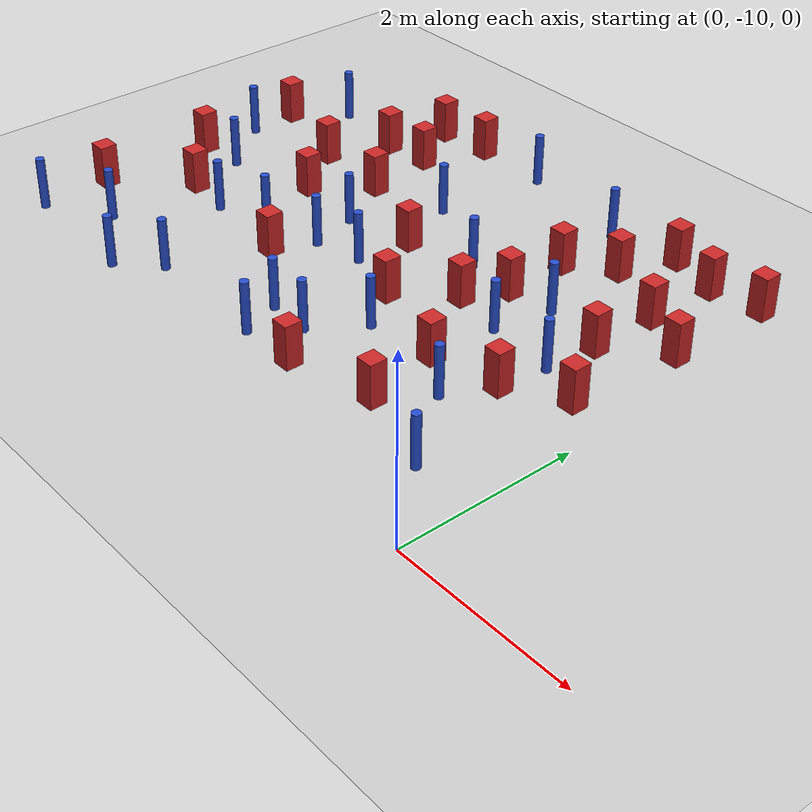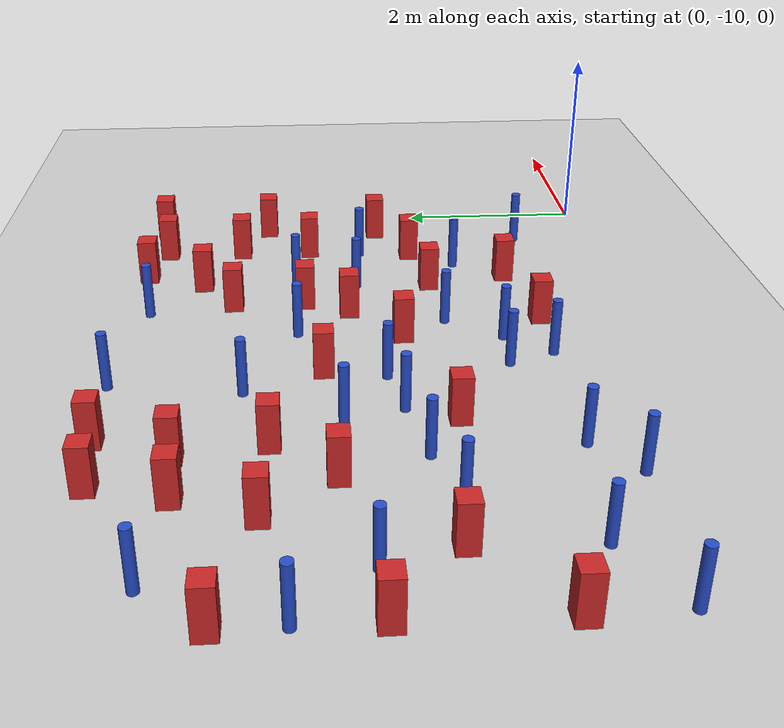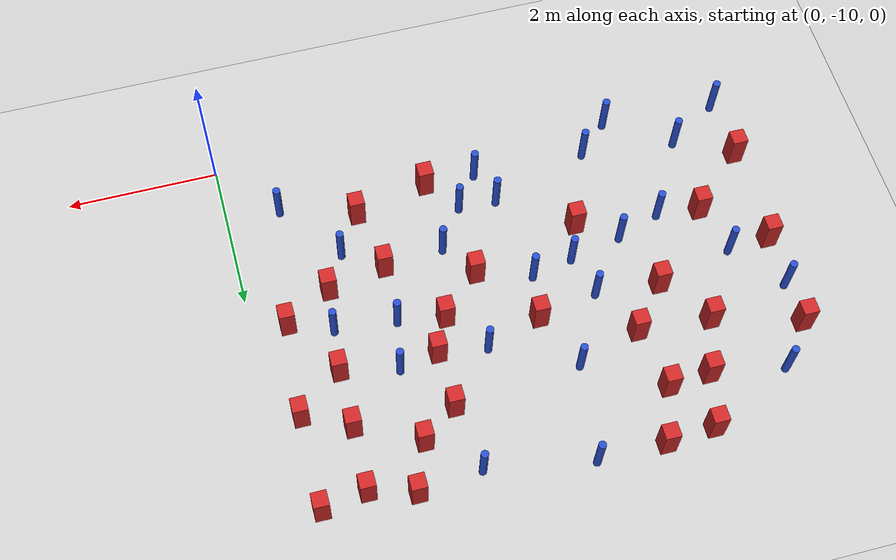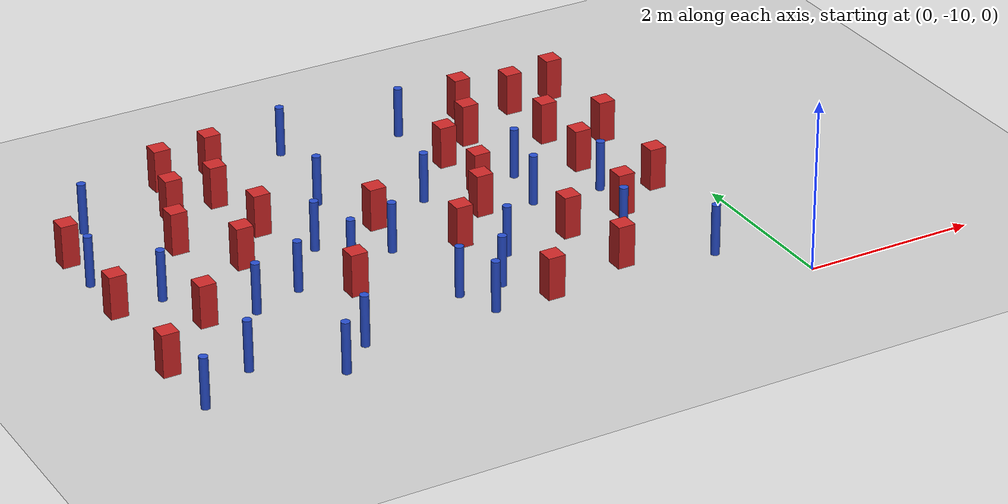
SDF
<sdf version="1.6">
 <world name="default">
  <model name="ground_plane">
   <static>1</static>
   <link name="link">
    <collision name="collision">
     <geometry><plane><normal>0 0 1</normal><size>100 100</size></plane></geometry>
     <surface><friction><ode><mu>100</mu><mu2>50</mu2></ode></friction></surface>
    </collision>
    <visual name="visual">
     <cast_shadows>0</cast_shadows>
     <geometry><plane><normal>0 0 1</normal><size>100 100</size></plane></geometry>
     <material>
      <ambient>1.0 1.0 1.0 1.0</ambient>
      <diffuse>0.8 0.8 0.8 1.0</diffuse>
      <specular>0.01 0.01 0.01 1.000000</specular>
     </material>
    </visual>
   </link>
  </model>
  <model name="square_post_obstacle16">
   <static>true</static>
   <pose>-2.2230492415 -6.63477181087 -6.11067671241e-07 -5.50515727128e-06 -8.79689657224e-07 2.37013304536e-05</pose>
   <link name="link">
    <pose>0 0 0.25 0 -0 0</pose>
    <inertial>
     <mass>100</mass>
     <inertia>
      <ixx>0.166667</ixx>
      <ixy>0</ixy>
      <ixz>0</ixz>
      <iyy>0.166667</iyy>
      <iyz>0</iyz>
      <izz>0.166667</izz>
     </inertia>
    </inertial>
    <collision name="collision"><geometry><box><size>.2 .2 .5</size></box></geometry></collision>
    <visual name="visual">
     <geometry><box><size>.2 .2 .5</size></box></geometry>
     <material>
      <script><name>Gazebo/Red</name><uri>file://media/materials/scripts/gazebo.material</uri></script>
     </material>
    </visual>
   </link>
  </model>
  <model name="square_post_obstacle17">
   <static>true</static>
   <pose>-4.90225215587 -5.46459543071 -6.11067671241e-07 -5.50515727128e-06 -8.79689657224e-07 2.37013304536e-05</pose>
   <link name="link">
    <pose>0 0 0.25 0 -0 0</pose>
    <inertial>
     <mass>100</mass>
     <inertia>
      <ixx>0.166667</ixx>
      <ixy>0</ixy>
      <ixz>0</ixz>
      <iyy>0.166667</iyy>
      <iyz>0</iyz>
      <izz>0.166667</izz>
     </inertia>
    </inertial>
    <collision name="collision"><geometry><box><size>.2 .2 .5</size></box></geometry></collision>
    <visual name="visual">
     <geometry><box><size>.2 .2 .5</size></box></geometry>
     <material>
      <script><name>Gazebo/Red</name><uri>file://media/materials/scripts/gazebo.material</uri></script>
     </material>
    </visual>
   </link>
  </model>
  <model name="pole_obstacle14">
   <static>true</static>
   <pose>-5.57467568248 -7.8820841528 -9.47619616065e-06 5.49618799737e-07 2.36310414037e-07 -1.55090534814e-07</pose>
   <link name="link">
    <pose>0 0 0.3 0 -0 0</pose>
    <inertial>
     <mass>1</mass>
     <inertia><ixx>0.145833</ixx><ixy>0</ixy><ixz>0</ixz><iyy>0.145833</iyy><iyz>0</iyz><izz>0.125</izz></inertia>
    </inertial>
    <collision name="collision">
     <geometry><cylinder><radius>0.05</radius><length>.6</length></cylinder></geometry>
    </collision>
    <visual name="visual">
     <geometry><cylinder><radius>0.05</radius><length>.6</length></cylinder></geometry>
     <material>
      <script><name>Gazebo/Blue</name><uri>file://media/materials/scripts/gazebo.material</uri></script>
     </material>
    </visual>
   </link>
  </model>
  <model name="square_post_obstacle24">
   <static>true</static>
   <pose>-0.95335000836 -5.91281050949 -6.11067671241e-07 -5.50515727128e-06 -8.79689657224e-07 2.37013304536e-05</pose>
   <link name="link">
    <pose>0 0 0.25 0 -0 0</pose>
    <inertial>
     <mass>100</mass>
     <inertia>
      <ixx>0.166667</ixx>
      <ixy>0</ixy>
      <ixz>0</ixz>
      <iyy>0.166667</iyy>
      <iyz>0</iyz>
      <izz>0.166667</izz>
     </inertia>
    </inertial>
    <collision name="collision"><geometry><box><size>.2 .2 .5</size></box></geometry></collision>
    <visual name="visual">
     <geometry><box><size>.2 .2 .5</size></box></geometry>
     <material>
      <script><name>Gazebo/Red</name><uri>file://media/materials/scripts/gazebo.material</uri></script>
     </material>
    </visual>
   </link>
  </model>
  <model name="square_post_obstacle34">
   <static>true</static>
   <pose>-4.63194995254 -4.75044083374 -6.11067671241e-07 -5.50515727128e-06 -8.79689657224e-07 2.37013304536e-05</pose>
   <link name="link">
    <pose>0 0 0.25 0 -0 0</pose>
    <inertial>
     <mass>100</mass>
     <inertia>
      <ixx>0.166667</ixx>
      <ixy>0</ixy>
      <ixz>0</ixz>
      <iyy>0.166667</iyy>
      <iyz>0</iyz>
      <izz>0.166667</izz>
     </inertia>
    </inertial>
    <collision name="collision"><geometry><box><size>.2 .2 .5</size></box></geometry></collision>
    <visual name="visual">
     <geometry><box><size>.2 .2 .5</size></box></geometry>
     <material>
      <script><name>Gazebo/Red</name><uri>file://media/materials/scripts/gazebo.material</uri></script>
     </material>
    </visual>
   </link>
  </model>
  <model name="pole_obstacle36">
   <static>true</static>
   <pose>-4.27256095001 -7.52233419704 -9.47619616065e-06 5.49618799737e-07 2.36310414037e-07 -1.55090534814e-07</pose>
   <link name="link">
    <pose>0 0 0.3 0 -0 0</pose>
    <inertial>
     <mass>1</mass>
     <inertia><ixx>0.145833</ixx><ixy>0</ixy><ixz>0</ixz><iyy>0.145833</iyy><iyz>0</iyz><izz>0.125</izz></inertia>
    </inertial>
    <collision name="collision">
     <geometry><cylinder><radius>0.05</radius><length>.6</length></cylinder></geometry>
    </collision>
    <visual name="visual">
     <geometry><cylinder><radius>0.05</radius><length>.6</length></cylinder></geometry>
     <material>
      <script><name>Gazebo/Blue</name><uri>file://media/materials/scripts/gazebo.material</uri></script>
     </material>
    </visual>
   </link>
  </model>
  <model name="square_post_obstacle41">
   <static>true</static>
   <pose>-1.51514881737 -4.89056977395 -6.11067671241e-07 -5.50515727128e-06 -8.79689657224e-07 2.37013304536e-05</pose>
   <link name="link">
    <pose>0 0 0.25 0 -0 0</pose>
    <inertial>
     <mass>100</mass>
     <inertia>
      <ixx>0.166667</ixx>
      <ixy>0</ixy>
      <ixz>0</ixz>
      <iyy>0.166667</iyy>
      <iyz>0</iyz>
      <izz>0.166667</izz>
     </inertia>
    </inertial>
    <collision name="collision"><geometry><box><size>.2 .2 .5</size></box></geometry></collision>
    <visual name="visual">
     <geometry><box><size>.2 .2 .5</size></box></geometry>
     <material>
      <script><name>Gazebo/Red</name><uri>file://media/materials/scripts/gazebo.material</uri></script>
     </material>
    </visual>
   </link>
  </model>
  <model name="pole_obstacle44">
   <static>true</static>
   <pose>-6.31597186964 -7.13616952807 -9.47619616065e-06 5.49618799737e-07 2.36310414037e-07 -1.55090534814e-07</pose>
   <link name="link">
    <pose>0 0 0.3 0 -0 0</pose>
    <inertial>
     <mass>1</mass>
     <inertia><ixx>0.145833</ixx><ixy>0</ixy><ixz>0</ixz><iyy>0.145833</iyy><iyz>0</iyz><izz>0.125</izz></inertia>
    </inertial>
    <collision name="collision">
     <geometry><cylinder><radius>0.05</radius><length>.6</length></cylinder></geometry>
    </collision>
    <visual name="visual">
     <geometry><cylinder><radius>0.05</radius><length>.6</length></cylinder></geometry>
     <material>
      <script><name>Gazebo/Blue</name><uri>file://media/materials/scripts/gazebo.material</uri></script>
     </material>
    </visual>
   </link>
  </model>
  <model name="square_post_obstacle42">
   <static>true</static>
   <pose>-2.23775466635 -5.87062115987 -6.11067671241e-07 -5.50515727128e-06 -8.79689657224e-07 2.37013304536e-05</pose>
   <link name="link">
    <pose>0 0 0.25 0 -0 0</pose>
    <inertial>
     <mass>100</mass>
     <inertia>
      <ixx>0.166667</ixx>
      <ixy>0</ixy>
      <ixz>0</ixz>
      <iyy>0.166667</iyy>
      <iyz>0</iyz>
      <izz>0.166667</izz>
     </inertia>
    </inertial>
    <collision name="collision"><geometry><box><size>.2 .2 .5</size></box></geometry></collision>
    <visual name="visual">
     <geometry><box><size>.2 .2 .5</size></box></geometry>
     <material>
      <script><name>Gazebo/Red</name><uri>file://media/materials/scripts/gazebo.material</uri></script>
     </material>
    </visual>
   </link>
  </model>
  <model name="square_post_obstacle43">
   <static>true</static>
   <pose>-6.86675011821 -7.1739250253 -6.11067671241e-07 -5.50515727128e-06 -8.79689657224e-07 2.37013304536e-05</pose>
   <link name="link">
    <pose>0 0 0.25 0 -0 0</pose>
    <inertial>
     <mass>100</mass>
     <inertia>
      <ixx>0.166667</ixx>
      <ixy>0</ixy>
      <ixz>0</ixz>
      <iyy>0.166667</iyy>
      <iyz>0</iyz>
      <izz>0.166667</izz>
     </inertia>
    </inertial>
    <collision name="collision"><geometry><box><size>.2 .2 .5</size></box></geometry></collision>
    <visual name="visual">
     <geometry><box><size>.2 .2 .5</size></box></geometry>
     <material>
      <script><name>Gazebo/Red</name><uri>file://media/materials/scripts/gazebo.material</uri></script>
     </material>
    </visual>
   </link>
  </model>
  <model name="square_post_obstacle46">
   <static>true</static>
   <pose>-1.86546183177 -8.00379529042 -6.11067671241e-07 -5.50515727128e-06 -8.79689657224e-07 2.37013304536e-05</pose>
   <link name="link">
    <pose>0 0 0.25 0 -0 0</pose>
    <inertial>
     <mass>100</mass>
     <inertia>
      <ixx>0.166667</ixx>
      <ixy>0</ixy>
      <ixz>0</ixz>
      <iyy>0.166667</iyy>
      <iyz>0</iyz>
      <izz>0.166667</izz>
     </inertia>
    </inertial>
    <collision name="collision"><geometry><box><size>.2 .2 .5</size></box></geometry></collision>
    <visual name="visual">
     <geometry><box><size>.2 .2 .5</size></box></geometry>
     <material>
      <script><name>Gazebo/Red</name><uri>file://media/materials/scripts/gazebo.material</uri></script>
     </material>
    </visual>
   </link>
  </model>
  <model name="pole_obstacle51">
   <static>true</static>
   <pose>-4.98210711811 -7.67297280239 -9.47619616065e-06 5.49618799737e-07 2.36310414037e-07 -1.55090534814e-07</pose>
   <link name="link">
    <pose>0 0 0.3 0 -0 0</pose>
    <inertial>
     <mass>1</mass>
     <inertia><ixx>0.145833</ixx><ixy>0</ixy><ixz>0</ixz><iyy>0.145833</iyy><iyz>0</iyz><izz>0.125</izz></inertia>
    </inertial>
    <collision name="collision">
     <geometry><cylinder><radius>0.05</radius><length>.6</length></cylinder></geometry>
    </collision>
    <visual name="visual">
     <geometry><cylinder><radius>0.05</radius><length>.6</length></cylinder></geometry>
     <material>
      <script><name>Gazebo/Blue</name><uri>file://media/materials/scripts/gazebo.material</uri></script>
     </material>
    </visual>
   </link>
  </model>
  <model name="pole_obstacle52">
   <static>true</static>
   <pose>-0.716757902808 -9.18378725573 -9.47619616065e-06 5.49618799737e-07 2.36310414038e-07 -1.55090534813e-07</pose>
   <link name="link">
    <pose>0 0 0.3 0 -0 0</pose>
    <inertial>
     <mass>1</mass>
     <inertia><ixx>0.145833</ixx><ixy>0</ixy><ixz>0</ixz><iyy>0.145833</iyy><iyz>0</iyz><izz>0.125</izz></inertia>
    </inertial>
    <collision name="collision">
     <geometry><cylinder><radius>0.05</radius><length>.6</length></cylinder></geometry>
    </collision>
    <visual name="visual">
     <geometry><cylinder><radius>0.05</radius><length>.6</length></cylinder></geometry>
     <material>
      <script><name>Gazebo/Blue</name><uri>file://media/materials/scripts/gazebo.material</uri></script>
     </material>
    </visual>
   </link>
  </model>
  <model name="pole_obstacle53">
   <static>true</static>
   <pose>-5.31810497081 -9.44087777405 -9.47619616065e-06 5.49618799737e-07 2.36310414065e-07 -1.55090534796e-07</pose>
   <link name="link">
    <pose>0 0 0.3 0 -0 0</pose>
    <inertial>
     <mass>1</mass>
     <inertia><ixx>0.145833</ixx><ixy>0</ixy><ixz>0</ixz><iyy>0.145833</iyy><iyz>0</iyz><izz>0.125</izz></inertia>
    </inertial>
    <collision name="collision">
     <geometry><cylinder><radius>0.05</radius><length>.6</length></cylinder></geometry>
    </collision>
    <visual name="visual">
     <geometry><cylinder><radius>0.05</radius><length>.6</length></cylinder></geometry>
     <material>
      <script><name>Gazebo/Blue</name><uri>file://media/materials/scripts/gazebo.material</uri></script>
     </material>
    </visual>
   </link>
  </model>
  <model name="pole_obstacle62">
   <static>true</static>
   <pose>-4.89816250877 -9.0465787362 -9.47619616065e-06 5.49618799737e-07 2.36310414065e-07 -1.55090534796e-07</pose>
   <link name="link">
    <pose>0 0 0.3 0 -0 0</pose>
    <inertial>
     <mass>1</mass>
     <inertia><ixx>0.145833</ixx><ixy>0</ixy><ixz>0</ixz><iyy>0.145833</iyy><iyz>0</iyz><izz>0.125</izz></inertia>
    </inertial>
    <collision name="collision">
     <geometry><cylinder><radius>0.05</radius><length>.6</length></cylinder></geometry>
    </collision>
    <visual name="visual">
     <geometry><cylinder><radius>0.05</radius><length>.6</length></cylinder></geometry>
     <material>
      <script><name>Gazebo/Blue</name><uri>file://media/materials/scripts/gazebo.material</uri></script>
     </material>
    </visual>
   </link>
  </model>
  <model name="square_post_obstacle64">
   <static>true</static>
   <pose>-2.99067587329 -7.61975004704 -6.11067671241e-07 -5.50515727128e-06 -8.79689657224e-07 2.37013304536e-05</pose>
   <link name="link">
    <pose>0 0 0.25 0 -0 0</pose>
    <inertial>
     <mass>100</mass>
     <inertia>
      <ixx>0.166667</ixx>
      <ixy>0</ixy>
      <ixz>0</ixz>
      <iyy>0.166667</iyy>
      <iyz>0</iyz>
      <izz>0.166667</izz>
     </inertia>
    </inertial>
    <collision name="collision"><geometry><box><size>.2 .2 .5</size></box></geometry></collision>
    <visual name="visual">
     <geometry><box><size>.2 .2 .5</size></box></geometry>
     <material>
      <script><name>Gazebo/Red</name><uri>file://media/materials/scripts/gazebo.material</uri></script>
     </material>
    </visual>
   </link>
  </model>
  <model name="pole_obstacle63">
   <static>true</static>
   <pose>-6.86157214523 -9.35175950766 -9.47619616065e-06 5.49618799737e-07 2.36310414065e-07 -1.55090534796e-07</pose>
   <link name="link">
    <pose>0 0 0.3 0 -0 0</pose>
    <inertial>
     <mass>1</mass>
     <inertia><ixx>0.145833</ixx><ixy>0</ixy><ixz>0</ixz><iyy>0.145833</iyy><iyz>0</iyz><izz>0.125</izz></inertia>
    </inertial>
    <collision name="collision">
     <geometry><cylinder><radius>0.05</radius><length>.6</length></cylinder></geometry>
    </collision>
    <visual name="visual">
     <geometry><cylinder><radius>0.05</radius><length>.6</length></cylinder></geometry>
     <material>
      <script><name>Gazebo/Blue</name><uri>file://media/materials/scripts/gazebo.material</uri></script>
     </material>
    </visual>
   </link>
  </model>
  <model name="square_post_obstacle66">
   <static>true</static>
   <pose>-6.8911330682 -8.52848239405 -6.11067671241e-07 -5.50515727128e-06 -8.79689657224e-07 2.37013304536e-05</pose>
   <link name="link">
    <pose>0 0 0.25 0 -0 0</pose>
    <inertial>
     <mass>100</mass>
     <inertia>
      <ixx>0.166667</ixx>
      <ixy>0</ixy>
      <ixz>0</ixz>
      <iyy>0.166667</iyy>
      <iyz>0</iyz>
      <izz>0.166667</izz>
     </inertia>
    </inertial>
    <collision name="collision"><geometry><box><size>.2 .2 .5</size></box></geometry></collision>
    <visual name="visual">
     <geometry><box><size>.2 .2 .5</size></box></geometry>
     <material>
      <script><name>Gazebo/Red</name><uri>file://media/materials/scripts/gazebo.material</uri></script>
     </material>
    </visual>
   </link>
  </model>
  <model name="pole_obstacle75">
   <static>true</static>
   <pose>-2.86741933258 -6.55187637001 -9.47619616065e-06 5.49618799738e-07 2.3631041406e-07 -1.55090534801e-07</pose>
   <link name="link">
    <pose>0 0 0.3 0 -0 0</pose>
    <inertial>
     <mass>1</mass>
     <inertia><ixx>0.145833</ixx><ixy>0</ixy><ixz>0</ixz><iyy>0.145833</iyy><iyz>0</iyz><izz>0.125</izz></inertia>
    </inertial>
    <collision name="collision">
     <geometry><cylinder><radius>0.05</radius><length>.6</length></cylinder></geometry>
    </collision>
    <visual name="visual">
     <geometry><cylinder><radius>0.05</radius><length>.6</length></cylinder></geometry>
     <material>
      <script><name>Gazebo/Blue</name><uri>file://media/materials/scripts/gazebo.material</uri></script>
     </material>
    </visual>
   </link>
  </model>
  <model name="square_post_obstacle80">
   <static>true</static>
   <pose>-0.928055222309 -5.06208723331 -6.11067671241e-07 -5.50515727128e-06 -8.79689657224e-07 2.37013304536e-05</pose>
   <link name="link">
    <pose>0 0 0.25 0 -0 0</pose>
    <inertial>
     <mass>100</mass>
     <inertia>
      <ixx>0.166667</ixx>
      <ixy>0</ixy>
      <ixz>0</ixz>
      <iyy>0.166667</iyy>
      <iyz>0</iyz>
      <izz>0.166667</izz>
     </inertia>
    </inertial>
    <collision name="collision"><geometry><box><size>.2 .2 .5</size></box></geometry></collision>
    <visual name="visual">
     <geometry><box><size>.2 .2 .5</size></box></geometry>
     <material>
      <script><name>Gazebo/Red</name><uri>file://media/materials/scripts/gazebo.material</uri></script>
     </material>
    </visual>
   </link>
  </model>
  <model name="pole_obstacle87">
   <static>true</static>
   <pose>-1.84187029447 -7.20431044216 -9.47619616065e-06 5.49618799737e-07 2.36310414061e-07 -1.550905348e-07</pose>
   <link name="link">
    <pose>0 0 0.3 0 -0 0</pose>
    <inertial>
     <mass>1</mass>
     <inertia><ixx>0.145833</ixx><ixy>0</ixy><ixz>0</ixz><iyy>0.145833</iyy><iyz>0</iyz><izz>0.125</izz></inertia>
    </inertial>
    <collision name="collision">
     <geometry><cylinder><radius>0.05</radius><length>.6</length></cylinder></geometry>
    </collision>
    <visual name="visual">
     <geometry><cylinder><radius>0.05</radius><length>.6</length></cylinder></geometry>
     <material>
      <script><name>Gazebo/Blue</name><uri>file://media/materials/scripts/gazebo.material</uri></script>
     </material>
    </visual>
   </link>
  </model>
  <model name="pole_obstacle98">
   <static>true</static>
   <pose>-6.85305529876 -6.47580880195 -9.47619616065e-06 5.49618799737e-07 2.36310414037e-07 -1.55090534814e-07</pose>
   <link name="link">
    <pose>0 0 0.3 0 -0 0</pose>
    <inertial>
     <mass>1</mass>
     <inertia><ixx>0.145833</ixx><ixy>0</ixy><ixz>0</ixz><iyy>0.145833</iyy><iyz>0</iyz><izz>0.125</izz></inertia>
    </inertial>
    <collision name="collision">
     <geometry><cylinder><radius>0.05</radius><length>.6</length></cylinder></geometry>
    </collision>
    <visual name="visual">
     <geometry><cylinder><radius>0.05</radius><length>.6</length></cylinder></geometry>
     <material>
      <script><name>Gazebo/Blue</name><uri>file://media/materials/scripts/gazebo.material</uri></script>
     </material>
    </visual>
   </link>
  </model>
  <model name="pole_obstacle101">
   <static>true</static>
   <pose>-2.35795193268 -4.98842952527 -9.47619616065e-06 5.49618799738e-07 2.3631041406e-07 -1.55090534801e-07</pose>
   <link name="link">
    <pose>0 0 0.3 0 -0 0</pose>
    <inertial>
     <mass>1</mass>
     <inertia><ixx>0.145833</ixx><ixy>0</ixy><ixz>0</ixz><iyy>0.145833</iyy><iyz>0</iyz><izz>0.125</izz></inertia>
    </inertial>
    <collision name="collision">
     <geometry><cylinder><radius>0.05</radius><length>.6</length></cylinder></geometry>
    </collision>
    <visual name="visual">
     <geometry><cylinder><radius>0.05</radius><length>.6</length></cylinder></geometry>
     <material>
      <script><name>Gazebo/Blue</name><uri>file://media/materials/scripts/gazebo.material</uri></script>
     </material>
    </visual>
   </link>
  </model>
  <model name="pole_obstacle104">
   <static>true</static>
   <pose>-3.71507855934 -7.40340525966 -9.4761961606e-06 5.49618799729e-07 2.36310414006e-07 -1.55090534822e-07</pose>
   <link name="link">
    <pose>0 0 0.3 0 -0 0</pose>
    <inertial>
     <mass>1</mass>
     <inertia><ixx>0.145833</ixx><ixy>0</ixy><ixz>0</ixz><iyy>0.145833</iyy><iyz>0</iyz><izz>0.125</izz></inertia>
    </inertial>
    <collision name="collision">
     <geometry><cylinder><radius>0.05</radius><length>.6</length></cylinder></geometry>
    </collision>
    <visual name="visual">
     <geometry><cylinder><radius>0.05</radius><length>.6</length></cylinder></geometry>
     <material>
      <script><name>Gazebo/Blue</name><uri>file://media/materials/scripts/gazebo.material</uri></script>
     </material>
    </visual>
   </link>
  </model>
  <model name="pole_obstacle115">
   <static>true</static>
   <pose>-1.36881035912 -8.34465276369 -9.47619616065e-06 5.49618799737e-07 2.36310414046e-07 -1.55090534809e-07</pose>
   <link name="link">
    <pose>0 0 0.3 0 -0 0</pose>
    <inertial>
     <mass>1</mass>
     <inertia><ixx>0.145833</ixx><ixy>0</ixy><ixz>0</ixz><iyy>0.145833</iyy><iyz>0</iyz><izz>0.125</izz></inertia>
    </inertial>
    <collision name="collision">
     <geometry><cylinder><radius>0.05</radius><length>.6</length></cylinder></geometry>
    </collision>
    <visual name="visual">
     <geometry><cylinder><radius>0.05</radius><length>.6</length></cylinder></geometry>
     <material>
      <script><name>Gazebo/Blue</name><uri>file://media/materials/scripts/gazebo.material</uri></script>
     </material>
    </visual>
   </link>
  </model>
  <model name="pole_obstacle119">
   <static>true</static>
   <pose>-1.71108850357 -6.53974833264 -9.47619616065e-06 5.49618799737e-07 2.36310414061e-07 -1.550905348e-07</pose>
   <link name="link">
    <pose>0 0 0.3 0 -0 0</pose>
    <inertial>
     <mass>1</mass>
     <inertia><ixx>0.145833</ixx><ixy>0</ixy><ixz>0</ixz><iyy>0.145833</iyy><iyz>0</iyz><izz>0.125</izz></inertia>
    </inertial>
    <collision name="collision">
     <geometry><cylinder><radius>0.05</radius><length>.6</length></cylinder></geometry>
    </collision>
    <visual name="visual">
     <geometry><cylinder><radius>0.05</radius><length>.6</length></cylinder></geometry>
     <material>
      <script><name>Gazebo/Blue</name><uri>file://media/materials/scripts/gazebo.material</uri></script>
     </material>
    </visual>
   </link>
  </model>
  <model name="square_post_obstacle110">
   <static>true</static>
   <pose>-0.340177048944 -4.96784500817 -6.11067671241e-07 -5.50515727128e-06 -8.79689657224e-07 2.37013304536e-05</pose>
   <link name="link">
    <pose>0 0 0.25 0 -0 0</pose>
    <inertial>
     <mass>100</mass>
     <inertia>
      <ixx>0.166667</ixx>
      <ixy>0</ixy>
      <ixz>0</ixz>
      <iyy>0.166667</iyy>
      <iyz>0</iyz>
      <izz>0.166667</izz>
     </inertia>
    </inertial>
    <collision name="collision"><geometry><box><size>.2 .2 .5</size></box></geometry></collision>
    <visual name="visual">
     <geometry><box><size>.2 .2 .5</size></box></geometry>
     <material>
      <script><name>Gazebo/Red</name><uri>file://media/materials/scripts/gazebo.material</uri></script>
     </material>
    </visual>
   </link>
  </model>
  <model name="square_post_obstacle112">
   <static>true</static>
   <pose>-1.70279008593 -8.86875234258 -6.11067671241e-07 -5.50515727128e-06 -8.79689657224e-07 2.37013304536e-05</pose>
   <link name="link">
    <pose>0 0 0.25 0 -0 0</pose>
    <inertial>
     <mass>100</mass>
     <inertia>
      <ixx>0.166667</ixx>
      <ixy>0</ixy>
      <ixz>0</ixz>
      <iyy>0.166667</iyy>
      <iyz>0</iyz>
      <izz>0.166667</izz>
     </inertia>
    </inertial>
    <collision name="collision"><geometry><box><size>.2 .2 .5</size></box></geometry></collision>
    <visual name="visual">
     <geometry><box><size>.2 .2 .5</size></box></geometry>
     <material>
      <script><name>Gazebo/Red</name><uri>file://media/materials/scripts/gazebo.material</uri></script>
     </material>
    </visual>
   </link>
  </model>
  <model name="pole_obstacle123">
   <static>true</static>
   <pose>-3.74601824736 -4.7493476603 -9.4761961606e-06 5.49618799729e-07 2.36310414006e-07 -1.55090534822e-07</pose>
   <link name="link">
    <pose>0 0 0.3 0 -0 0</pose>
    <inertial>
     <mass>1</mass>
     <inertia><ixx>0.145833</ixx><ixy>0</ixy><ixz>0</ixz><iyy>0.145833</iyy><iyz>0</iyz><izz>0.125</izz></inertia>
    </inertial>
    <collision name="collision">
     <geometry><cylinder><radius>0.05</radius><length>.6</length></cylinder></geometry>
    </collision>
    <visual name="visual">
     <geometry><cylinder><radius>0.05</radius><length>.6</length></cylinder></geometry>
     <material>
      <script><name>Gazebo/Blue</name><uri>file://media/materials/scripts/gazebo.material</uri></script>
     </material>
    </visual>
   </link>
  </model>
  <model name="pole_obstacle126">
   <static>true</static>
   <pose>-3.04883813845 -8.64249954073 -9.47619616065e-06 5.49618799738e-07 2.36310414059e-07 -1.55090534802e-07</pose>
   <link name="link">
    <pose>0 0 0.3 0 -0 0</pose>
    <inertial>
     <mass>1</mass>
     <inertia><ixx>0.145833</ixx><ixy>0</ixy><ixz>0</ixz><iyy>0.145833</iyy><iyz>0</iyz><izz>0.125</izz></inertia>
    </inertial>
    <collision name="collision">
     <geometry><cylinder><radius>0.05</radius><length>.6</length></cylinder></geometry>
    </collision>
    <visual name="visual">
     <geometry><cylinder><radius>0.05</radius><length>.6</length></cylinder></geometry>
     <material>
      <script><name>Gazebo/Blue</name><uri>file://media/materials/scripts/gazebo.material</uri></script>
     </material>
    </visual>
   </link>
  </model>
  <model name="square_post_obstacle113">
   <static>true</static>
   <pose>-4.46403770929 -7.99922189745 -6.11067671241e-07 -5.50515727128e-06 -8.79689657224e-07 2.37013304536e-05</pose>
   <link name="link">
    <pose>0 0 0.25 0 -0 0</pose>
    <inertial>
     <mass>100</mass>
     <inertia>
      <ixx>0.166667</ixx>
      <ixy>0</ixy>
      <ixz>0</ixz>
      <iyy>0.166667</iyy>
      <iyz>0</iyz>
      <izz>0.166667</izz>
     </inertia>
    </inertial>
    <collision name="collision"><geometry><box><size>.2 .2 .5</size></box></geometry></collision>
    <visual name="visual">
     <geometry><box><size>.2 .2 .5</size></box></geometry>
     <material>
      <script><name>Gazebo/Red</name><uri>file://media/materials/scripts/gazebo.material</uri></script>
     </material>
    </visual>
   </link>
  </model>
  <model name="pole_obstacle128">
   <static>true</static>
   <pose>-6.16374826604 -8.90899686043 -9.47619616065e-06 5.49618799737e-07 2.36310414065e-07 -1.55090534796e-07</pose>
   <link name="link">
    <pose>0 0 0.3 0 -0 0</pose>
    <inertial>
     <mass>1</mass>
     <inertia><ixx>0.145833</ixx><ixy>0</ixy><ixz>0</ixz><iyy>0.145833</iyy><iyz>0</iyz><izz>0.125</izz></inertia>
    </inertial>
    <collision name="collision">
     <geometry><cylinder><radius>0.05</radius><length>.6</length></cylinder></geometry>
    </collision>
    <visual name="visual">
     <geometry><cylinder><radius>0.05</radius><length>.6</length></cylinder></geometry>
     <material>
      <script><name>Gazebo/Blue</name><uri>file://media/materials/scripts/gazebo.material</uri></script>
     </material>
    </visual>
   </link>
  </model>
  <model name="square_post_obstacle114">
   <static>true</static>
   <pose>-2.69320470251 -9.08783876317 -6.11067671241e-07 -5.50515727128e-06 -8.79689657224e-07 2.37013304536e-05</pose>
   <link name="link">
    <pose>0 0 0.25 0 -0 0</pose>
    <inertial>
     <mass>100</mass>
     <inertia>
      <ixx>0.166667</ixx>
      <ixy>0</ixy>
      <ixz>0</ixz>
      <iyy>0.166667</iyy>
      <iyz>0</iyz>
      <izz>0.166667</izz>
     </inertia>
    </inertial>
    <collision name="collision"><geometry><box><size>.2 .2 .5</size></box></geometry></collision>
    <visual name="visual">
     <geometry><box><size>.2 .2 .5</size></box></geometry>
     <material>
      <script><name>Gazebo/Red</name><uri>file://media/materials/scripts/gazebo.material</uri></script>
     </material>
    </visual>
   </link>
  </model>
  <model name="pole_obstacle139">
   <static>true</static>
   <pose>-3.92748852948 -6.03209004079 -9.47619616065e-06 5.49618799738e-07 2.3631041406e-07 -1.55090534801e-07</pose>
   <link name="link">
    <pose>0 0 0.3 0 -0 0</pose>
    <inertial>
     <mass>1</mass>
     <inertia><ixx>0.145833</ixx><ixy>0</ixy><ixz>0</ixz><iyy>0.145833</iyy><iyz>0</iyz><izz>0.125</izz></inertia>
    </inertial>
    <collision name="collision">
     <geometry><cylinder><radius>0.05</radius><length>.6</length></cylinder></geometry>
    </collision>
    <visual name="visual">
     <geometry><cylinder><radius>0.05</radius><length>.6</length></cylinder></geometry>
     <material>
      <script><name>Gazebo/Blue</name><uri>file://media/materials/scripts/gazebo.material</uri></script>
     </material>
    </visual>
   </link>
  </model>
  <model name="square_post_obstacle127">
   <static>true</static>
   <pose>-0.961150119242 -6.69767677082 -6.11067671241e-07 -5.50515727128e-06 -8.79689657224e-07 2.37013304536e-05</pose>
   <link name="link">
    <pose>0 0 0.25 0 -0 0</pose>
    <inertial>
     <mass>100</mass>
     <inertia>
      <ixx>0.166667</ixx>
      <ixy>0</ixy>
      <ixz>0</ixz>
      <iyy>0.166667</iyy>
      <iyz>0</iyz>
      <izz>0.166667</izz>
     </inertia>
    </inertial>
    <collision name="collision"><geometry><box><size>.2 .2 .5</size></box></geometry></collision>
    <visual name="visual">
     <geometry><box><size>.2 .2 .5</size></box></geometry>
     <material>
      <script><name>Gazebo/Red</name><uri>file://media/materials/scripts/gazebo.material</uri></script>
     </material>
    </visual>
   </link>
  </model>
  <model name="square_post_obstacle133">
   <static>true</static>
   <pose>-0.359669252862 -6.21211655384 -6.11067671241e-07 -5.50515727128e-06 -8.79689657224e-07 2.37013304536e-05</pose>
   <link name="link">
    <pose>0 0 0.25 0 -0 0</pose>
    <inertial>
     <mass>100</mass>
     <inertia>
      <ixx>0.166667</ixx>
      <ixy>0</ixy>
      <ixz>0</ixz>
      <iyy>0.166667</iyy>
      <iyz>0</iyz>
      <izz>0.166667</izz>
     </inertia>
    </inertial>
    <collision name="collision"><geometry><box><size>.2 .2 .5</size></box></geometry></collision>
    <visual name="visual">
     <geometry><box><size>.2 .2 .5</size></box></geometry>
     <material>
      <script><name>Gazebo/Red</name><uri>file://media/materials/scripts/gazebo.material</uri></script>
     </material>
    </visual>
   </link>
  </model>
  <model name="pole_obstacle144">
   <static>true</static>
   <pose>-1.02795737822 -7.28111659343 -9.47619616065e-06 5.49618799737e-07 2.36310414062e-07 -1.55090534799e-07</pose>
   <link name="link">
    <pose>0 0 0.3 0 -0 0</pose>
    <inertial>
     <mass>1</mass>
     <inertia><ixx>0.145833</ixx><ixy>0</ixy><ixz>0</ixz><iyy>0.145833</iyy><iyz>0</iyz><izz>0.125</izz></inertia>
    </inertial>
    <collision name="collision">
     <geometry><cylinder><radius>0.05</radius><length>.6</length></cylinder></geometry>
    </collision>
    <visual name="visual">
     <geometry><cylinder><radius>0.05</radius><length>.6</length></cylinder></geometry>
     <material>
      <script><name>Gazebo/Blue</name><uri>file://media/materials/scripts/gazebo.material</uri></script>
     </material>
    </visual>
   </link>
  </model>
  <model name="pole_obstacle149">
   <static>true</static>
   <pose>-3.3793518923 -9.0912758051 -9.47619616065e-06 5.49618799738e-07 2.36310414059e-07 -1.55090534802e-07</pose>
   <link name="link">
    <pose>0 0 0.3 0 -0 0</pose>
    <inertial>
     <mass>1</mass>
     <inertia><ixx>0.145833</ixx><ixy>0</ixy><ixz>0</ixz><iyy>0.145833</iyy><iyz>0</iyz><izz>0.125</izz></inertia>
    </inertial>
    <collision name="collision">
     <geometry><cylinder><radius>0.05</radius><length>.6</length></cylinder></geometry>
    </collision>
    <visual name="visual">
     <geometry><cylinder><radius>0.05</radius><length>.6</length></cylinder></geometry>
     <material>
      <script><name>Gazebo/Blue</name><uri>file://media/materials/scripts/gazebo.material</uri></script>
     </material>
    </visual>
   </link>
  </model>
  <model name="square_post_obstacle141">
   <static>true</static>
   <pose>-5.457838157 -5.51071916369 -6.11067671241e-07 -5.50515727128e-06 -8.79689657224e-07 2.37013304536e-05</pose>
   <link name="link">
    <pose>0 0 0.25 0 -0 0</pose>
    <inertial>
     <mass>100</mass>
     <inertia>
      <ixx>0.166667</ixx>
      <ixy>0</ixy>
      <ixz>0</ixz>
      <iyy>0.166667</iyy>
      <iyz>0</iyz>
      <izz>0.166667</izz>
     </inertia>
    </inertial>
    <collision name="collision"><geometry><box><size>.2 .2 .5</size></box></geometry></collision>
    <visual name="visual">
     <geometry><box><size>.2 .2 .5</size></box></geometry>
     <material>
      <script><name>Gazebo/Red</name><uri>file://media/materials/scripts/gazebo.material</uri></script>
     </material>
    </visual>
   </link>
  </model>
  <model name="pole_obstacle153">
   <static>true</static>
   <pose>-6.43679518351 -5.35290013318 -9.47619616065e-06 5.49618799737e-07 2.36310414037e-07 -1.55090534814e-07</pose>
   <link name="link">
    <pose>0 0 0.3 0 -0 0</pose>
    <inertial>
     <mass>1</mass>
     <inertia><ixx>0.145833</ixx><ixy>0</ixy><ixz>0</ixz><iyy>0.145833</iyy><iyz>0</iyz><izz>0.125</izz></inertia>
    </inertial>
    <collision name="collision">
     <geometry><cylinder><radius>0.05</radius><length>.6</length></cylinder></geometry>
    </collision>
    <visual name="visual">
     <geometry><cylinder><radius>0.05</radius><length>.6</length></cylinder></geometry>
     <material>
      <script><name>Gazebo/Blue</name><uri>file://media/materials/scripts/gazebo.material</uri></script>
     </material>
    </visual>
   </link>
  </model>
  <model name="pole_obstacle171">
   <static>true</static>
   <pose>-4.42557298578 -6.95689863395 -9.47619616065e-06 5.49618799737e-07 2.36310414037e-07 -1.55090534814e-07</pose>
   <link name="link">
    <pose>0 0 0.3 0 -0 0</pose>
    <inertial>
     <mass>1</mass>
     <inertia><ixx>0.145833</ixx><ixy>0</ixy><ixz>0</ixz><iyy>0.145833</iyy><iyz>0</iyz><izz>0.125</izz></inertia>
    </inertial>
    <collision name="collision">
     <geometry><cylinder><radius>0.05</radius><length>.6</length></cylinder></geometry>
    </collision>
    <visual name="visual">
     <geometry><cylinder><radius>0.05</radius><length>.6</length></cylinder></geometry>
     <material>
      <script><name>Gazebo/Blue</name><uri>file://media/materials/scripts/gazebo.material</uri></script>
     </material>
    </visual>
   </link>
  </model>
  <model name="pole_obstacle174">
   <static>true</static>
   <pose>-3.55512335118 -8.62062983736 -9.4761961606e-06 5.49618799729e-07 2.36310414e-07 -1.55090534824e-07</pose>
   <link name="link">
    <pose>0 0 0.3 0 -0 0</pose>
    <inertial>
     <mass>1</mass>
     <inertia><ixx>0.145833</ixx><ixy>0</ixy><ixz>0</ixz><iyy>0.145833</iyy><iyz>0</iyz><izz>0.125</izz></inertia>
    </inertial>
    <collision name="collision">
     <geometry><cylinder><radius>0.05</radius><length>.6</length></cylinder></geometry>
    </collision>
    <visual name="visual">
     <geometry><cylinder><radius>0.05</radius><length>.6</length></cylinder></geometry>
     <material>
      <script><name>Gazebo/Blue</name><uri>file://media/materials/scripts/gazebo.material</uri></script>
     </material>
    </visual>
   </link>
  </model>
  <model name="square_post_obstacle169">
   <static>true</static>
   <pose>-3.61221181222 -6.79611235907 -6.11067671241e-07 -5.50515727128e-06 -8.79689657224e-07 2.37013304536e-05</pose>
   <link name="link">
    <pose>0 0 0.25 0 -0 0</pose>
    <inertial>
     <mass>100</mass>
     <inertia>
      <ixx>0.166667</ixx>
      <ixy>0</ixy>
      <ixz>0</ixz>
      <iyy>0.166667</iyy>
      <iyz>0</iyz>
      <izz>0.166667</izz>
     </inertia>
    </inertial>
    <collision name="collision"><geometry><box><size>.2 .2 .5</size></box></geometry></collision>
    <visual name="visual">
     <geometry><box><size>.2 .2 .5</size></box></geometry>
     <material>
      <script><name>Gazebo/Red</name><uri>file://media/materials/scripts/gazebo.material</uri></script>
     </material>
    </visual>
   </link>
  </model>
  <model name="pole_obstacle181">
   <static>true</static>
   <pose>-2.6754930522 -8.08662140374 -9.4761961606e-06 5.49618799729e-07 2.36310414e-07 -1.55090534824e-07</pose>
   <link name="link">
    <pose>0 0 0.3 0 -0 0</pose>
    <inertial>
     <mass>1</mass>
     <inertia><ixx>0.145833</ixx><ixy>0</ixy><ixz>0</ixz><iyy>0.145833</iyy><iyz>0</iyz><izz>0.125</izz></inertia>
    </inertial>
    <collision name="collision">
     <geometry><cylinder><radius>0.05</radius><length>.6</length></cylinder></geometry>
    </collision>
    <visual name="visual">
     <geometry><cylinder><radius>0.05</radius><length>.6</length></cylinder></geometry>
     <material>
      <script><name>Gazebo/Blue</name><uri>file://media/materials/scripts/gazebo.material</uri></script>
     </material>
    </visual>
   </link>
  </model>
  <model name="square_post_obstacle177">
   <static>true</static>
   <pose>-6.8631339822 -5.90480389748 -6.11067671241e-07 -5.50515727128e-06 -8.79689657224e-07 2.37013304536e-05</pose>
   <link name="link">
    <pose>0 0 0.25 0 -0 0</pose>
    <inertial>
     <mass>100</mass>
     <inertia>
      <ixx>0.166667</ixx>
      <ixy>0</ixy>
      <ixz>0</ixz>
      <iyy>0.166667</iyy>
      <iyz>0</iyz>
      <izz>0.166667</izz>
     </inertia>
    </inertial>
    <collision name="collision"><geometry><box><size>.2 .2 .5</size></box></geometry></collision>
    <visual name="visual">
     <geometry><box><size>.2 .2 .5</size></box></geometry>
     <material>
      <script><name>Gazebo/Red</name><uri>file://media/materials/scripts/gazebo.material</uri></script>
     </material>
    </visual>
   </link>
  </model>
  <model name="square_post_obstacle192">
   <static>true</static>
   <pose>-6.13343306386 -7.80875177688 -6.11067671241e-07 -5.50515727128e-06 -8.79689657224e-07 2.37013304536e-05</pose>
   <link name="link">
    <pose>0 0 0.25 0 -0 0</pose>
    <inertial>
     <mass>100</mass>
     <inertia>
      <ixx>0.166667</ixx>
      <ixy>0</ixy>
      <ixz>0</ixz>
      <iyy>0.166667</iyy>
      <iyz>0</iyz>
      <izz>0.166667</izz>
     </inertia>
    </inertial>
    <collision name="collision"><geometry><box><size>.2 .2 .5</size></box></geometry></collision>
    <visual name="visual">
     <geometry><box><size>.2 .2 .5</size></box></geometry>
     <material>
      <script><name>Gazebo/Red</name><uri>file://media/materials/scripts/gazebo.material</uri></script>
     </material>
    </visual>
   </link>
  </model>
  <model name="square_post_obstacle194">
   <static>true</static>
   <pose>-5.72888059804 -6.22758886662 -6.11067671241e-07 -5.50515727128e-06 -8.79689657224e-07 2.37013304536e-05</pose>
   <link name="link">
    <pose>0 0 0.25 0 -0 0</pose>
    <inertial>
     <mass>100</mass>
     <inertia>
      <ixx>0.166667</ixx>
      <ixy>0</ixy>
      <ixz>0</ixz>
      <iyy>0.166667</iyy>
      <iyz>0</iyz>
      <izz>0.166667</izz>
     </inertia>
    </inertial>
    <collision name="collision"><geometry><box><size>.2 .2 .5</size></box></geometry></collision>
    <visual name="visual">
     <geometry><box><size>.2 .2 .5</size></box></geometry>
     <material>
      <script><name>Gazebo/Red</name><uri>file://media/materials/scripts/gazebo.material</uri></script>
     </material>
    </visual>
   </link>
  </model>
  <model name="square_post_obstacle198">
   <static>true</static>
   <pose>-0.467286514871 -7.49745713013 -6.11067671241e-07 -5.50515727128e-06 -8.79689657224e-07 2.37013304536e-05</pose>
   <link name="link">
    <pose>0 0 0.25 0 -0 0</pose>
    <inertial>
     <mass>100</mass>
     <inertia>
      <ixx>0.166667</ixx>
      <ixy>0</ixy>
      <ixz>0</ixz>
      <iyy>0.166667</iyy>
      <iyz>0</iyz>
      <izz>0.166667</izz>
     </inertia>
    </inertial>
    <collision name="collision"><geometry><box><size>.2 .2 .5</size></box></geometry></collision>
    <visual name="visual">
     <geometry><box><size>.2 .2 .5</size></box></geometry>
     <material>
      <script><name>Gazebo/Red</name><uri>file://media/materials/scripts/gazebo.material</uri></script>
     </material>
    </visual>
   </link>
  </model>
  <model name="square_post_obstacle199">
   <static>true</static>
   <pose>-4.77223192518 -6.29771159046 -6.11067671241e-07 -5.50515727128e-06 -8.79689657224e-07 2.37013304536e-05</pose>
   <link name="link">
    <pose>0 0 0.25 0 -0 0</pose>
    <inertial>
     <mass>100</mass>
     <inertia>
      <ixx>0.166667</ixx>
      <ixy>0</ixy>
      <ixz>0</ixz>
      <iyy>0.166667</iyy>
      <iyz>0</iyz>
      <izz>0.166667</izz>
     </inertia>
    </inertial>
    <collision name="collision"><geometry><box><size>.2 .2 .5</size></box></geometry></collision>
    <visual name="visual">
     <geometry><box><size>.2 .2 .5</size></box></geometry>
     <material>
      <script><name>Gazebo/Red</name><uri>file://media/materials/scripts/gazebo.material</uri></script>
     </material>
    </visual>
   </link>
  </model>
  <model name="square_post_obstacle203">
   <static>true</static>
   <pose>-2.44678563607 -7.09488312791 -6.11067671241e-07 -5.50515727128e-06 -8.79689657224e-07 2.37013304536e-05</pose>
   <link name="link">
    <pose>0 0 0.25 0 -0 0</pose>
    <inertial>
     <mass>100</mass>
     <inertia>
      <ixx>0.166667</ixx>
      <ixy>0</ixy>
      <ixz>0</ixz>
      <iyy>0.166667</iyy>
      <iyz>0</iyz>
      <izz>0.166667</izz>
     </inertia>
    </inertial>
    <collision name="collision"><geometry><box><size>.2 .2 .5</size></box></geometry></collision>
    <visual name="visual">
     <geometry><box><size>.2 .2 .5</size></box></geometry>
     <material>
      <script><name>Gazebo/Red</name><uri>file://media/materials/scripts/gazebo.material</uri></script>
     </material>
    </visual>
   </link>
  </model>
  <model name="square_post_obstacle210">
   <static>true</static>
   <pose>-1.08871129429 -7.8520651021 -6.11067671241e-07 -5.50515727128e-06 -8.79689657224e-07 2.37013304536e-05</pose>
   <link name="link">
    <pose>0 0 0.25 0 -0 0</pose>
    <inertial>
     <mass>100</mass>
     <inertia>
      <ixx>0.166667</ixx>
      <ixy>0</ixy>
      <ixz>0</ixz>
      <iyy>0.166667</iyy>
      <iyz>0</iyz>
      <izz>0.166667</izz>
     </inertia>
    </inertial>
    <collision name="collision"><geometry><box><size>.2 .2 .5</size></box></geometry></collision>
    <visual name="visual">
     <geometry><box><size>.2 .2 .5</size></box></geometry>
     <material>
      <script><name>Gazebo/Red</name><uri>file://media/materials/scripts/gazebo.material</uri></script>
     </material>
    </visual>
   </link>
  </model>
  <model name="square_post_obstacle220">
   <static>true</static>
   <pose>-5.2572600498 -6.87886002312 -6.11067671241e-07 -5.50515727128e-06 -8.79689657224e-07 2.37013304536e-05</pose>
   <link name="link">
    <pose>0 0 0.25 0 -0 0</pose>
    <inertial>
     <mass>100</mass>
     <inertia>
      <ixx>0.166667</ixx>
      <ixy>0</ixy>
      <ixz>0</ixz>
      <iyy>0.166667</iyy>
      <iyz>0</iyz>
      <izz>0.166667</izz>
     </inertia>
    </inertial>
    <collision name="collision"><geometry><box><size>.2 .2 .5</size></box></geometry></collision>
    <visual name="visual">
     <geometry><box><size>.2 .2 .5</size></box></geometry>
     <material>
      <script><name>Gazebo/Red</name><uri>file://media/materials/scripts/gazebo.material</uri></script>
     </material>
    </visual>
   </link>
  </model>
  <model name="square_post_obstacle237">
   <static>true</static>
   <pose>-5.2721700498 -4.80511002312 -6.11067671241e-07 -5.50515727128e-06 -8.79689657224e-07 2.37013304536e-05</pose>
   <link name="link">
    <pose>0 0 0.25 0 -0 0</pose>
    <inertial>
     <mass>100</mass>
     <inertia>
      <ixx>0.166667</ixx>
      <ixy>0</ixy>
      <ixz>0</ixz>
      <iyy>0.166667</iyy>
      <iyz>0</iyz>
      <izz>0.166667</izz>
     </inertia>
    </inertial>
    <collision name="collision"><geometry><box><size>.2 .2 .5</size></box></geometry></collision>
    <visual name="visual">
     <geometry><box><size>.2 .2 .5</size></box></geometry>
     <material>
      <script><name>Gazebo/Red</name><uri>file://media/materials/scripts/gazebo.material</uri></script>
     </material>
    </visual>
   </link>
  </model>
  <model name="square_post_obstacle245">
   <static>true</static>
   <pose>-1.7593000498 -5.51930002312 -6.11067671241e-07 -5.50515727128e-06 -8.79689657224e-07 2.37013304536e-05</pose>
   <link name="link">
    <pose>0 0 0.25 0 -0 0</pose>
    <inertial>
     <mass>100</mass>
     <inertia>
      <ixx>0.166667</ixx>
      <ixy>0</ixy>
      <ixz>0</ixz>
      <iyy>0.166667</iyy>
      <iyz>0</iyz>
      <izz>0.166667</izz>
     </inertia>
    </inertial>
    <collision name="collision"><geometry><box><size>.2 .2 .5</size></box></geometry></collision>
    <visual name="visual">
     <geometry><box><size>.2 .2 .5</size></box></geometry>
     <material>
      <script><name>Gazebo/Red</name><uri>file://media/materials/scripts/gazebo.material</uri></script>
     </material>
    </visual>
   </link>
  </model>
 </world>
</sdf>
